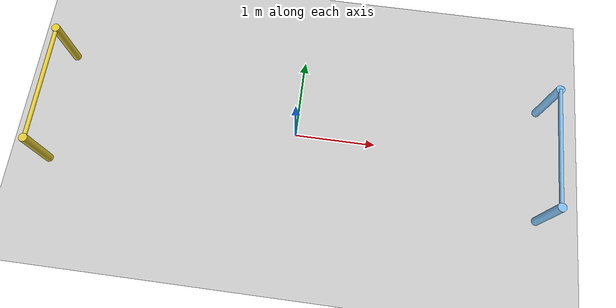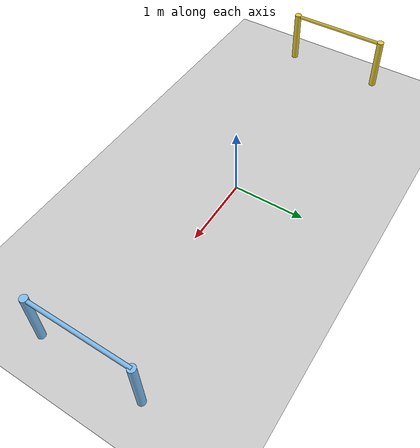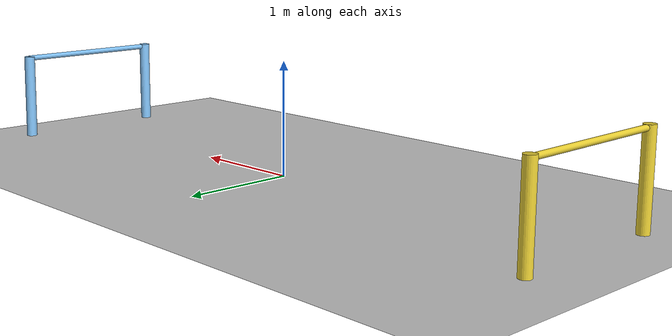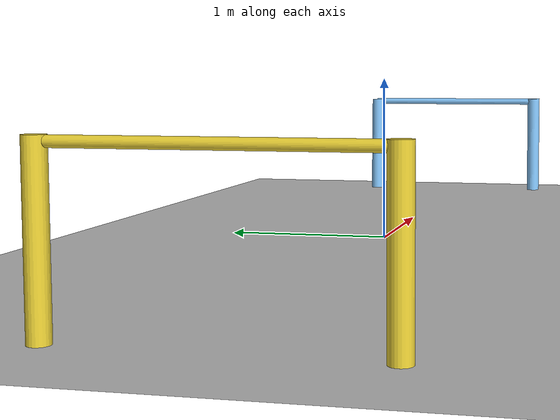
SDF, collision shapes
<?xml version="1.0" ?>
<sdf version="1.5">
  <model name="New Field">
    <static>true</static>
    <link name="field">
      <pose>0 0 0.01 0 0 0</pose>
      <collision name="collision">
        <geometry>
          <plane>
            <normal>0 0 1</normal>
            <size>7 4</size>
          </plane>
        </geometry>
        <surface>
          <friction>
            <ode>
              <mu>100</mu>
              <mu2>50</mu2>
            </ode>
          </friction>
        </surface>
      </collision>
      <visual name="carpet">
        <cast_shadows>false</cast_shadows>
        <geometry>
          <plane>
            <normal>0 0 1</normal>
            <size>7 4</size>
          </plane>
        </geometry>
        <material>
          <script>
            <uri>model://robocup09_spl_field/materials/scripts/</uri>
            <uri>model://robocup09_spl_field/materials/textures/</uri>
            <name>RoboCup/Carpet</name>
          </script>
        </material>
      </visual>
      <visual name="sideline_1">
        <pose>0 1.5 0.011 0 0 0</pose>
        <cast_shadows>false</cast_shadows>
        <geometry>
          <plane>
            <normal>0 0 1</normal>
            <size>6.05 0.05</size>
          </plane>
        </geometry>
        <material>
          <script>
            <uri>file://media/materials/scripts/gazebo.material</uri>
            <name>Gazebo/White</name>
          </script>
        </material>
      </visual>
      <visual name="sideline_2">
        <pose>0 -1.5 0.011 0 0 0</pose>
        <cast_shadows>false</cast_shadows>
        <geometry>
          <plane>
            <normal>0 0 1</normal>
            <size>6.05 0.05</size>
          </plane>
        </geometry>
        <material>
          <script>
            <uri>file://media/materials/scripts/gazebo.material</uri>
            <name>Gazebo/White</name>
          </script>
        </material>
      </visual>
      <visual name="endline_1">
        <pose>-3 0 0.011 0 0 0</pose>
        <cast_shadows>false</cast_shadows>
        <geometry>
          <plane>
            <normal>0 0 1</normal>
            <size>0.05 3.05</size>
          </plane>
        </geometry>
        <material>
          <script>
            <uri>file://media/materials/scripts/gazebo.material</uri>
            <name>Gazebo/White</name>
          </script>
        </material>
      </visual>
      <visual name="endline_2">
        <pose>3 0 0.011 0 0 0</pose>
        <cast_shadows>false</cast_shadows>
        <geometry>
          <plane>
            <normal>0 0 1</normal>
            <size>0.05 3.05</size>
          </plane>
        </geometry>
        <material>
          <script>
            <uri>file://media/materials/scripts/gazebo.material</uri>
            <name>Gazebo/White</name>
          </script>
        </material>
      </visual>
      <visual name="halfway_line">
        <pose>0 0 0.011 0 0 0</pose>
        <cast_shadows>false</cast_shadows>
        <geometry>
          <plane>
            <normal>0 0 1</normal>
            <size>0.05 3.05</size>
          </plane>
        </geometry>
        <material>
          <script>
            <uri>file://media/materials/scripts/gazebo.material</uri>
            <name>Gazebo/White</name>
          </script>
        </material>
      </visual>
      <visual name="area_1_line_y">
        <pose>-2.40 0 0.011 0 0 0</pose>
        <cast_shadows>false</cast_shadows>
        <geometry>
          <plane>
            <normal>0 0 1</normal>
            <size>0.05 2</size>
          </plane>
        </geometry>
        <material>
          <script>
            <uri>file://media/materials/scripts/gazebo.material</uri>
            <name>Gazebo/White</name>
          </script>
        </material>
      </visual>
      <visual name="area_2_line_y">
        <pose>-2.70 1 0.011 0 0 0</pose>
        <cast_shadows>false</cast_shadows>
        <geometry>
          <plane>
            <normal>0 0 1</normal>
            <size>0.65 0.05</size>
          </plane>
        </geometry>
        <material>
          <script>
            <uri>file://media/materials/scripts/gazebo.material</uri>
            <name>Gazebo/White</name>
          </script>
        </material>
      </visual>
      <visual name="area_3_line_y">
        <pose>-2.70 -1 0.011 0 0 0</pose>
        <cast_shadows>false</cast_shadows>
        <geometry>
          <plane>
            <normal>0 0 1</normal>
            <size>0.65 0.05</size>
          </plane>
        </geometry>
        <material>
          <script>
            <uri>file://media/materials/scripts/gazebo.material</uri>
            <name>Gazebo/White</name>
          </script>
        </material>
      </visual>
      <visual name="area_1_line_b">
        <pose>2.40 0 0.011 0 0 0</pose>
        <cast_shadows>false</cast_shadows>
        <geometry>
          <plane>
            <normal>0 0 1</normal>
            <size>0.05 2</size>
          </plane>
        </geometry>
        <material>
          <script>
            <uri>file://media/materials/scripts/gazebo.material</uri>
            <name>Gazebo/White</name>
          </script>
        </material>
      </visual>
      <visual name="area_2_line_b">
        <pose>2.70 1 0.011 0 0 0</pose>
        <cast_shadows>false</cast_shadows>
        <geometry>
          <plane>
            <normal>0 0 1</normal>
            <size>0.65 0.05</size>
          </plane>
        </geometry>
        <material>
          <script>
            <uri>file://media/materials/scripts/gazebo.material</uri>
            <name>Gazebo/White</name>
          </script>
        </material>
      </visual>
      <visual name="area_3_line_b">
        <pose>2.70 -1 0.011 0 0 0</pose>
        <cast_shadows>false</cast_shadows>
        <geometry>
          <plane>
            <normal>0 0 1</normal>
            <size>0.65 0.05</size>
          </plane>
        </geometry>
        <material>
          <script>
            <uri>file://media/materials/scripts/gazebo.material</uri>
            <name>Gazebo/White</name>
          </script>
        </material>
      </visual>
      <visual name="penalty_b">
        <pose>-1.20 0 0.01 0 0 0</pose>
        <cast_shadows>false</cast_shadows>
        <geometry>
          <cylinder>
            <radius>0.05</radius>
            <length>0.0005</length>
          </cylinder>
        </geometry>
        <material>
          <script>
            <uri>file://media/materials/scripts/gazebo.material</uri>
            <name>Gazebo/White</name>
          </script>
        </material>
      </visual>
      <visual name="penalty_y">
        <pose>1.20 0 0.01 0 0 0</pose>
        <cast_shadows>false</cast_shadows>
        <geometry>
          <cylinder>
            <radius>0.05</radius>
            <length>0.0005</length>
          </cylinder>
        </geometry>
        <material>
          <script>
            <uri>file://media/materials/scripts/gazebo.material</uri>
            <name>Gazebo/White</name>
          </script>
        </material>
      </visual>
      <visual name="center_point">
        <pose>0 0 0.01 0 0 0</pose>
        <cast_shadows>false</cast_shadows>
        <geometry>
          <cylinder>
            <radius>0.05</radius>
            <length>0.0005</length>
          </cylinder>
        </geometry>
        <material>
          <script>
            <uri>file://media/materials/scripts/gazebo.material</uri>
            <name>Gazebo/White</name>
          </script>
        </material>
      </visual>
      <visual name="center_circle">
        <pose>0 0 0 -0.01 0 0</pose>
        <cast_shadows>false</cast_shadows>
        <geometry>
          <mesh>
            <scale>1 1 0.75</scale>
            <uri>model://robocup09_spl_field/meshes/circle.dae</uri>
          </mesh>
        </geometry>
        <material>
          <script>
            <uri>file://media/materials/scripts/gazebo.material</uri>
            <name>Gazebo/White</name>
          </script>
        </material>
      </visual>
    </link>
    <link name="left_post_y">
      <pose>-3 0.7 0.41 0 0 0</pose>
      <collision name="collision">
        <geometry>
          <cylinder>
            <radius>0.05</radius>
            <length>0.8</length>
          </cylinder>
        </geometry>
      </collision>
      <visual name="visual">
        <geometry>
          <cylinder>
            <radius>0.05</radius>
            <length>0.8</length>
          </cylinder>
        </geometry>
        <material>
          <script>
            <uri>file://media/materials/scripts/gazebo.material</uri>
            <name>Gazebo/ZincYellow</name>
          </script>
        </material>
      </visual>
    </link>

    <link name="right_post_y">
      <pose>-3 -0.7 0.41 0 0 0</pose>
      <collision name="collision">
        <geometry>
          <cylinder>
            <radius>0.05</radius>
            <length>0.8</length>
          </cylinder>
        </geometry>
      </collision>
      <visual name="visual">
        <geometry>
          <cylinder>
            <radius>0.05</radius>
            <length>0.8</length>
          </cylinder>
        </geometry>
        <material>
          <script>
            <uri>file://media/materials/scripts/gazebo.material</uri>
            <name>Gazebo/ZincYellow</name>
          </script>
        </material>
      </visual>
    </link>

    <link name="crossbar_y">
      <pose>-3 0 0.785 1.5708 1.5708 0</pose>
      <collision name="collision">
        <geometry>
          <cylinder>
            <radius>0.025</radius>
            <length>1.4</length>
          </cylinder>
        </geometry>
      </collision>
      <visual name="visual">
        <geometry>
          <cylinder>
            <radius>0.025</radius>
            <length>1.4</length>
          </cylinder>
        </geometry>
        <material>
          <script>
            <uri>file://media/materials/scripts/gazebo.material</uri>
            <name>Gazebo/ZincYellow</name>
          </script>
        </material>
      </visual>
    </link>

    <link name="left_post_b">
      <pose>3 0.7 0.4 0.01 0 0</pose>
      <collision name="collision">
        <geometry>
          <cylinder>
            <radius>0.05</radius>
            <length>0.8</length>
          </cylinder>
        </geometry>
      </collision>
      <visual name="visual">
        <geometry>
          <cylinder>
            <radius>0.05</radius>
            <length>0.8</length>
          </cylinder>
        </geometry>
        <material>
          <script>
            <uri>file://media/materials/scripts/gazebo.material</uri>
            <name>Gazebo/SkyBlue</name>
          </script>
        </material>
      </visual>
    </link>

    <link name="right_post_b">
      <pose>3 -0.7 0.41 0 0 0</pose>
      <collision name="collision">
        <geometry>
          <cylinder>
            <radius>0.05</radius>
            <length>0.8</length>
          </cylinder>
        </geometry>
      </collision>
      <visual name="visual">
        <geometry>
          <cylinder>
            <radius>0.05</radius>
            <length>0.8</length>
          </cylinder>
        </geometry>
        <material>
          <script>
            <uri>file://media/materials/scripts/gazebo.material</uri>
            <name>Gazebo/SkyBlue</name>
          </script>
        </material>
      </visual>
    </link>

    <link name="crossbar_b">
      <pose>3 0 0.785 1.5708 1.5708 0</pose>
      <collision name="collision">
        <geometry>
          <cylinder>
            <radius>0.025</radius>
            <length>1.4</length>
          </cylinder>
        </geometry>
      </collision>
      <visual name="visual">
        <geometry>
          <cylinder>
            <radius>0.025</radius>
            <length>1.4</length>
          </cylinder>
        </geometry>
        <material>
          <script>
            <uri>file://media/materials/scripts/gazebo.material</uri>
            <name>Gazebo/SkyBlue</name>
          </script>
        </material>
      </visual>
    </link>

  </model>
</sdf>
